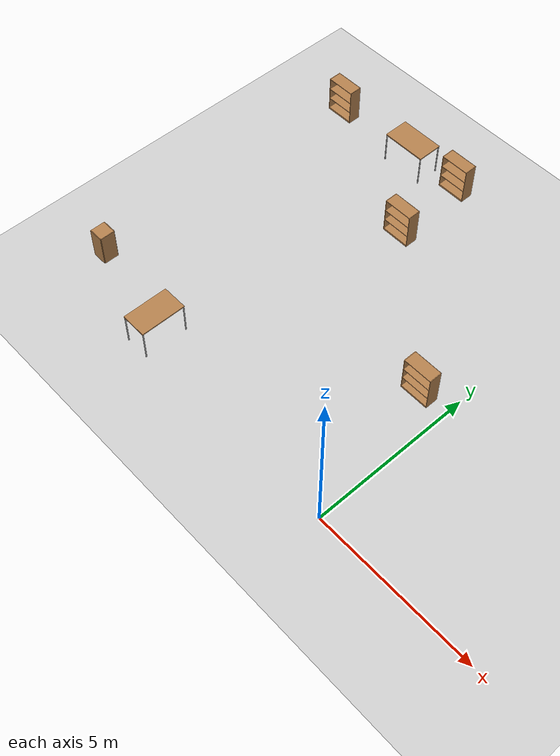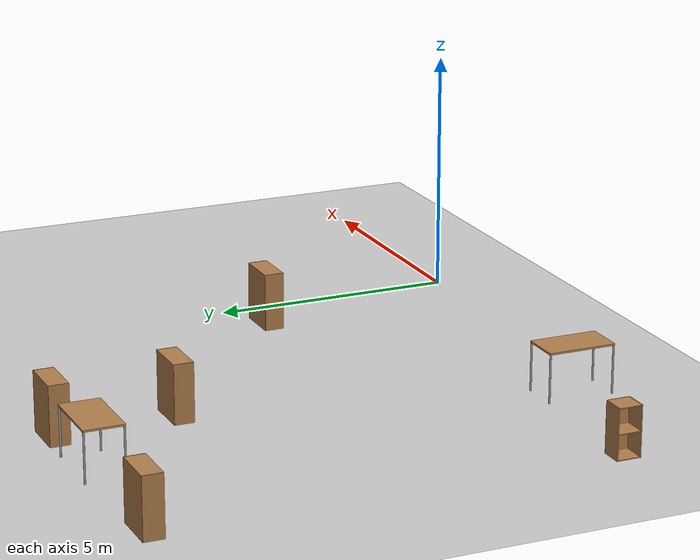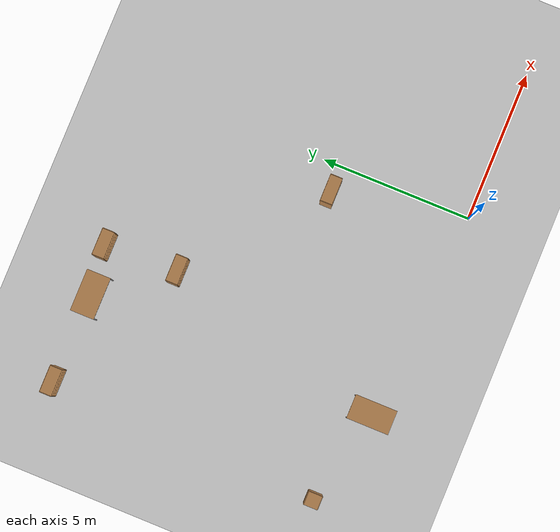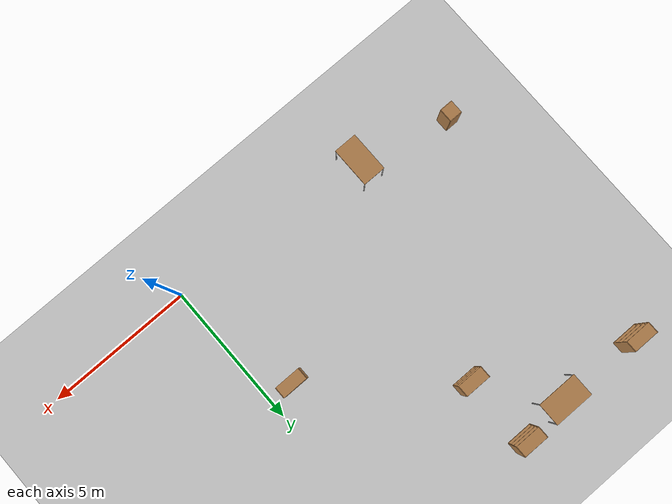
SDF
<sdf version="1.6">
 <world name="default">
  <model name="ground_plane">
   <static>1</static>
   <link name="link">
    <collision name="collision">
     <geometry><plane><normal>0 0 1</normal><size>100 100</size></plane></geometry>
     <surface><friction><ode><mu>100</mu><mu2>50</mu2></ode></friction></surface>
    </collision>
    <visual name="visual">
     <cast_shadows>0</cast_shadows>
     <geometry><plane><normal>0 0 1</normal><size>100 100</size></plane></geometry>
     <material>
      <script><uri>file://media/materials/scripts/gazebo.material</uri><name>Gazebo/Grey</name></script>
     </material>
    </visual>
   </link>
  </model>
  <model name="bookshelf_clone">
   <static>1</static>
   <link name="link">
    <inertial><mass>1</mass></inertial>
    <collision name="back">
     <pose>0 0.005 0.6 0 -0 0</pose>
     <geometry><box><size>0.9 0.01 1.2</size></box></geometry>
    </collision>
    <visual name="visual1">
     <pose>0 0.005 0.6 0 -0 0</pose>
     <geometry><box><size>0.9 0.01 1.2</size></box></geometry>
     <material>
      <script><uri>file://media/materials/scripts/gazebo.material</uri><name>Gazebo/Wood</name></script>
     </material>
    </visual>
    <collision name="left_side">
     <pose>0.45 -0.195 0.6 0 -0 0</pose>
     <geometry><box><size>0.02 0.4 1.2</size></box></geometry>
    </collision>
    <visual name="visual2">
     <pose>0.45 -0.195 0.6 0 -0 0</pose>
     <geometry><box><size>0.02 0.4 1.2</size></box></geometry>
     <material>
      <script><uri>file://media/materials/scripts/gazebo.material</uri><name>Gazebo/Wood</name></script>
     </material>
    </visual>
    <collision name="right_side">
     <pose>-0.45 -0.195 0.6 0 -0 0</pose>
     <geometry><box><size>0.02 0.4 1.2</size></box></geometry>
    </collision>
    <visual name="visual3">
     <pose>-0.45 -0.195 0.6 0 -0 0</pose>
     <geometry><box><size>0.02 0.4 1.2</size></box></geometry>
     <material>
      <script><uri>file://media/materials/scripts/gazebo.material</uri><name>Gazebo/Wood</name></script>
     </material>
    </visual>
    <collision name="bottom">
     <pose>0 -0.195 0.03 0 -0 0</pose>
     <geometry><box><size>0.88 0.4 0.06</size></box></geometry>
    </collision>
    <visual name="visual4">
     <pose>0 -0.195 0.03 0 -0 0</pose>
     <geometry><box><size>0.88 0.4 0.06</size></box></geometry>
     <material>
      <script><uri>file://media/materials/scripts/gazebo.material</uri><name>Gazebo/Wood</name></script>
     </material>
    </visual>
    <collision name="top">
     <pose>0 -0.195 1.19 0 -0 0</pose>
     <geometry><box><size>0.88 0.4 0.02</size></box></geometry>
    </collision>
    <visual name="visual5">
     <pose>0 -0.195 1.19 0 -0 0</pose>
     <geometry><box><size>0.88 0.4 0.02</size></box></geometry>
     <material>
      <script><uri>file://media/materials/scripts/gazebo.material</uri><name>Gazebo/Wood</name></script>
     </material>
    </visual>
    <collision name="low_shelf">
     <pose>0 -0.195 0.43 0 -0 0</pose>
     <geometry><box><size>0.88 0.4 0.02</size></box></geometry>
    </collision>
    <visual name="visual6">
     <pose>0 -0.195 0.43 0 -0 0</pose>
     <geometry><box><size>0.88 0.4 0.02</size></box></geometry>
     <material>
      <script><uri>file://media/materials/scripts/gazebo.material</uri><name>Gazebo/Wood</name></script>
     </material>
    </visual>
    <collision name="high_shelf">
     <pose>0 -0.195 0.8 0 -0 0</pose>
     <geometry><box><size>0.88 0.4 0.02</size></box></geometry>
    </collision>
    <visual name="visual7">
     <pose>0 -0.195 0.8 0 -0 0</pose>
     <geometry><box><size>0.88 0.4 0.02</size></box></geometry>
     <material>
      <script><uri>file://media/materials/scripts/gazebo.material</uri><name>Gazebo/Wood</name></script>
     </material>
    </visual>
   </link>
   <pose>-9.80392 10.4508 0 0 -0 0</pose>
  </model>
  <model name="bookshelf_clone_0">
   <static>1</static>
   <link name="link">
    <inertial><mass>1</mass></inertial>
    <collision name="back">
     <pose>0 0.005 0.6 0 -0 0</pose>
     <geometry><box><size>0.9 0.01 1.2</size></box></geometry>
    </collision>
    <visual name="visual1">
     <pose>0 0.005 0.6 0 -0 0</pose>
     <geometry><box><size>0.9 0.01 1.2</size></box></geometry>
     <material>
      <script><uri>file://media/materials/scripts/gazebo.material</uri><name>Gazebo/Wood</name></script>
     </material>
    </visual>
    <collision name="left_side">
     <pose>0.45 -0.195 0.6 0 -0 0</pose>
     <geometry><box><size>0.02 0.4 1.2</size></box></geometry>
    </collision>
    <visual name="visual2">
     <pose>0.45 -0.195 0.6 0 -0 0</pose>
     <geometry><box><size>0.02 0.4 1.2</size></box></geometry>
     <material>
      <script><uri>file://media/materials/scripts/gazebo.material</uri><name>Gazebo/Wood</name></script>
     </material>
    </visual>
    <collision name="right_side">
     <pose>-0.45 -0.195 0.6 0 -0 0</pose>
     <geometry><box><size>0.02 0.4 1.2</size></box></geometry>
    </collision>
    <visual name="visual3">
     <pose>-0.45 -0.195 0.6 0 -0 0</pose>
     <geometry><box><size>0.02 0.4 1.2</size></box></geometry>
     <material>
      <script><uri>file://media/materials/scripts/gazebo.material</uri><name>Gazebo/Wood</name></script>
     </material>
    </visual>
    <collision name="bottom">
     <pose>0 -0.195 0.03 0 -0 0</pose>
     <geometry><box><size>0.88 0.4 0.06</size></box></geometry>
    </collision>
    <visual name="visual4">
     <pose>0 -0.195 0.03 0 -0 0</pose>
     <geometry><box><size>0.88 0.4 0.06</size></box></geometry>
     <material>
      <script><uri>file://media/materials/scripts/gazebo.material</uri><name>Gazebo/Wood</name></script>
     </material>
    </visual>
    <collision name="top">
     <pose>0 -0.195 1.19 0 -0 0</pose>
     <geometry><box><size>0.88 0.4 0.02</size></box></geometry>
    </collision>
    <visual name="visual5">
     <pose>0 -0.195 1.19 0 -0 0</pose>
     <geometry><box><size>0.88 0.4 0.02</size></box></geometry>
     <material>
      <script><uri>file://media/materials/scripts/gazebo.material</uri><name>Gazebo/Wood</name></script>
     </material>
    </visual>
    <collision name="low_shelf">
     <pose>0 -0.195 0.43 0 -0 0</pose>
     <geometry><box><size>0.88 0.4 0.02</size></box></geometry>
    </collision>
    <visual name="visual6">
     <pose>0 -0.195 0.43 0 -0 0</pose>
     <geometry><box><size>0.88 0.4 0.02</size></box></geometry>
     <material>
      <script><uri>file://media/materials/scripts/gazebo.material</uri><name>Gazebo/Wood</name></script>
     </material>
    </visual>
    <collision name="high_shelf">
     <pose>0 -0.195 0.8 0 -0 0</pose>
     <geometry><box><size>0.88 0.4 0.02</size></box></geometry>
    </collision>
    <visual name="visual7">
     <pose>0 -0.195 0.8 0 -0 0</pose>
     <geometry><box><size>0.88 0.4 0.02</size></box></geometry>
     <material>
      <script><uri>file://media/materials/scripts/gazebo.material</uri><name>Gazebo/Wood</name></script>
     </material>
    </visual>
   </link>
   <pose>-5.09047 8.13769 0 0 -0 0</pose>
  </model>
  <model name="bookshelf_clone_1">
   <static>1</static>
   <link name="link">
    <inertial><mass>1</mass></inertial>
    <collision name="back">
     <pose>0 0.005 0.6 0 -0 0</pose>
     <geometry><box><size>0.9 0.01 1.2</size></box></geometry>
    </collision>
    <visual name="visual1">
     <pose>0 0.005 0.6 0 -0 0</pose>
     <geometry><box><size>0.9 0.01 1.2</size></box></geometry>
     <material>
      <script><uri>file://media/materials/scripts/gazebo.material</uri><name>Gazebo/Wood</name></script>
     </material>
    </visual>
    <collision name="left_side">
     <pose>0.45 -0.195 0.6 0 -0 0</pose>
     <geometry><box><size>0.02 0.4 1.2</size></box></geometry>
    </collision>
    <visual name="visual2">
     <pose>0.45 -0.195 0.6 0 -0 0</pose>
     <geometry><box><size>0.02 0.4 1.2</size></box></geometry>
     <material>
      <script><uri>file://media/materials/scripts/gazebo.material</uri><name>Gazebo/Wood</name></script>
     </material>
    </visual>
    <collision name="right_side">
     <pose>-0.45 -0.195 0.6 0 -0 0</pose>
     <geometry><box><size>0.02 0.4 1.2</size></box></geometry>
    </collision>
    <visual name="visual3">
     <pose>-0.45 -0.195 0.6 0 -0 0</pose>
     <geometry><box><size>0.02 0.4 1.2</size></box></geometry>
     <material>
      <script><uri>file://media/materials/scripts/gazebo.material</uri><name>Gazebo/Wood</name></script>
     </material>
    </visual>
    <collision name="bottom">
     <pose>0 -0.195 0.03 0 -0 0</pose>
     <geometry><box><size>0.88 0.4 0.06</size></box></geometry>
    </collision>
    <visual name="visual4">
     <pose>0 -0.195 0.03 0 -0 0</pose>
     <geometry><box><size>0.88 0.4 0.06</size></box></geometry>
     <material>
      <script><uri>file://media/materials/scripts/gazebo.material</uri><name>Gazebo/Wood</name></script>
     </material>
    </visual>
    <collision name="top">
     <pose>0 -0.195 1.19 0 -0 0</pose>
     <geometry><box><size>0.88 0.4 0.02</size></box></geometry>
    </collision>
    <visual name="visual5">
     <pose>0 -0.195 1.19 0 -0 0</pose>
     <geometry><box><size>0.88 0.4 0.02</size></box></geometry>
     <material>
      <script><uri>file://media/materials/scripts/gazebo.material</uri><name>Gazebo/Wood</name></script>
     </material>
    </visual>
    <collision name="low_shelf">
     <pose>0 -0.195 0.43 0 -0 0</pose>
     <geometry><box><size>0.88 0.4 0.02</size></box></geometry>
    </collision>
    <visual name="visual6">
     <pose>0 -0.195 0.43 0 -0 0</pose>
     <geometry><box><size>0.88 0.4 0.02</size></box></geometry>
     <material>
      <script><uri>file://media/materials/scripts/gazebo.material</uri><name>Gazebo/Wood</name></script>
     </material>
    </visual>
    <collision name="high_shelf">
     <pose>0 -0.195 0.8 0 -0 0</pose>
     <geometry><box><size>0.88 0.4 0.02</size></box></geometry>
    </collision>
    <visual name="visual7">
     <pose>0 -0.195 0.8 0 -0 0</pose>
     <geometry><box><size>0.88 0.4 0.02</size></box></geometry>
     <material>
      <script><uri>file://media/materials/scripts/gazebo.material</uri><name>Gazebo/Wood</name></script>
     </material>
    </visual>
   </link>
   <pose>-5.20737 10.5889 0 0 -0 0</pose>
  </model>
  <model name="bookshelf_clone_2">
   <static>1</static>
   <link name="link">
    <inertial><mass>1</mass></inertial>
    <collision name="back">
     <pose>0 0.005 0.6 0 -0 0</pose>
     <geometry><box><size>0.9 0.01 1.2</size></box></geometry>
    </collision>
    <visual name="visual1">
     <pose>0 0.005 0.6 0 -0 0</pose>
     <geometry><box><size>0.9 0.01 1.2</size></box></geometry>
     <material>
      <script><uri>file://media/materials/scripts/gazebo.material</uri><name>Gazebo/Wood</name></script>
     </material>
    </visual>
    <collision name="left_side">
     <pose>0.45 -0.195 0.6 0 -0 0</pose>
     <geometry><box><size>0.02 0.4 1.2</size></box></geometry>
    </collision>
    <visual name="visual2">
     <pose>0.45 -0.195 0.6 0 -0 0</pose>
     <geometry><box><size>0.02 0.4 1.2</size></box></geometry>
     <material>
      <script><uri>file://media/materials/scripts/gazebo.material</uri><name>Gazebo/Wood</name></script>
     </material>
    </visual>
    <collision name="right_side">
     <pose>-0.45 -0.195 0.6 0 -0 0</pose>
     <geometry><box><size>0.02 0.4 1.2</size></box></geometry>
    </collision>
    <visual name="visual3">
     <pose>-0.45 -0.195 0.6 0 -0 0</pose>
     <geometry><box><size>0.02 0.4 1.2</size></box></geometry>
     <material>
      <script><uri>file://media/materials/scripts/gazebo.material</uri><name>Gazebo/Wood</name></script>
     </material>
    </visual>
    <collision name="bottom">
     <pose>0 -0.195 0.03 0 -0 0</pose>
     <geometry><box><size>0.88 0.4 0.06</size></box></geometry>
    </collision>
    <visual name="visual4">
     <pose>0 -0.195 0.03 0 -0 0</pose>
     <geometry><box><size>0.88 0.4 0.06</size></box></geometry>
     <material>
      <script><uri>file://media/materials/scripts/gazebo.material</uri><name>Gazebo/Wood</name></script>
     </material>
    </visual>
    <collision name="top">
     <pose>0 -0.195 1.19 0 -0 0</pose>
     <geometry><box><size>0.88 0.4 0.02</size></box></geometry>
    </collision>
    <visual name="visual5">
     <pose>0 -0.195 1.19 0 -0 0</pose>
     <geometry><box><size>0.88 0.4 0.02</size></box></geometry>
     <material>
      <script><uri>file://media/materials/scripts/gazebo.material</uri><name>Gazebo/Wood</name></script>
     </material>
    </visual>
    <collision name="low_shelf">
     <pose>0 -0.195 0.43 0 -0 0</pose>
     <geometry><box><size>0.88 0.4 0.02</size></box></geometry>
    </collision>
    <visual name="visual6">
     <pose>0 -0.195 0.43 0 -0 0</pose>
     <geometry><box><size>0.88 0.4 0.02</size></box></geometry>
     <material>
      <script><uri>file://media/materials/scripts/gazebo.material</uri><name>Gazebo/Wood</name></script>
     </material>
    </visual>
    <collision name="high_shelf">
     <pose>0 -0.195 0.8 0 -0 0</pose>
     <geometry><box><size>0.88 0.4 0.02</size></box></geometry>
    </collision>
    <visual name="visual7">
     <pose>0 -0.195 0.8 0 -0 0</pose>
     <geometry><box><size>0.88 0.4 0.02</size></box></geometry>
     <material>
      <script><uri>file://media/materials/scripts/gazebo.material</uri><name>Gazebo/Wood</name></script>
     </material>
    </visual>
   </link>
   <pose>-0.920929 4.60032 0 0 -0 0</pose>
  </model>
  <model name="cabinet_clone">
   <static>1</static>
   <link name="cabinet_bottom_plate">
    <inertial>
     <pose>0 0 -1 0 -0 0</pose>
     <inertia><ixx>2.05</ixx><ixy>0</ixy><ixz>0</ixz><iyy>2.05</iyy><iyz>0</iyz><izz>2.05</izz></inertia>
     <mass>25</mass>
    </inertial>
    <collision name="cabinet_bottom_plate_geom">
     <pose>0 0 0.01 0 -0 0</pose>
     <geometry><box><size>0.45 0.45 0.02</size></box></geometry>
    </collision>
    <visual name="cabinet_bottom_plate_geom_visual">
     <pose>0 0 0.01 0 -0 0</pose>
     <geometry><box><size>0.45 0.45 0.02</size></box></geometry>
     <material>
      <script><uri>file://media/materials/scripts/gazebo.material</uri><name>Gazebo/Wood</name></script>
     </material>
    </visual>
    <collision name="cabinet_bottom_plate_geom_cabinet_back_plate">
     <pose>0.235 0 0.51 0 -0 0</pose>
     <geometry><box><size>0.02 0.45 1.02</size></box></geometry>
    </collision>
    <visual name="cabinet_bottom_plate_geom_cabinet_back_plate_visual">
     <pose>0.235 0 0.51 0 -0 0</pose>
     <geometry><box><size>0.02 0.45 1.02</size></box></geometry>
     <material>
      <script><uri>file://media/materials/scripts/gazebo.material</uri><name>Gazebo/Wood</name></script>
     </material>
    </visual>
    <collision name="cabinet_bottom_plate_geom_cabinet_left_plate">
     <pose>0 0.235 0.51 0 -0 0</pose>
     <geometry><box><size>0.45 0.02 1.02</size></box></geometry>
    </collision>
    <visual name="cabinet_bottom_plate_geom_cabinet_left_plate_visual">
     <pose>0 0.235 0.51 0 -0 0</pose>
     <geometry><box><size>0.45 0.02 1.02</size></box></geometry>
     <material>
      <script><uri>file://media/materials/scripts/gazebo.material</uri><name>Gazebo/Wood</name></script>
     </material>
    </visual>
    <collision name="cabinet_bottom_plate_geom_cabinet_middle_plate">
     <pose>0 0 0.51 0 -0 0</pose>
     <geometry><box><size>0.45 0.45 0.02</size></box></geometry>
    </collision>
    <visual name="cabinet_bottom_plate_geom_cabinet_middle_plate_visual">
     <pose>0 0 0.51 0 -0 0</pose>
     <geometry><box><size>0.45 0.45 0.02</size></box></geometry>
     <material>
      <script><uri>file://media/materials/scripts/gazebo.material</uri><name>Gazebo/Wood</name></script>
     </material>
    </visual>
    <collision name="cabinet_bottom_plate_geom_cabinet_right_plate">
     <pose>0 -0.235 0.51 0 -0 0</pose>
     <geometry><box><size>0.45 0.02 1.02</size></box></geometry>
    </collision>
    <visual name="cabinet_bottom_plate_geom_cabinet_right_plate_visual">
     <pose>0 -0.235 0.51 0 -0 0</pose>
     <geometry><box><size>0.45 0.02 1.02</size></box></geometry>
     <material>
      <script><uri>file://media/materials/scripts/gazebo.material</uri><name>Gazebo/Wood</name></script>
     </material>
    </visual>
    <collision name="cabinet_bottom_plate_geom_cabinet_top_plate">
     <pose>0 0 1.01 0 -0 0</pose>
     <geometry><box><size>0.45 0.45 0.02</size></box></geometry>
    </collision>
    <visual name="cabinet_bottom_plate_geom_cabinet_top_plate_visual">
     <pose>0 0 1.01 0 -0 0</pose>
     <geometry><box><size>0.45 0.45 0.02</size></box></geometry>
     <material>
      <script><uri>file://media/materials/scripts/gazebo.material</uri><name>Gazebo/Wood</name></script>
     </material>
    </visual>
   </link>
   <pose>-10.1589 1.25126 0 0 -0 0</pose>
  </model>
  <model name="table_clone_5">
   <static>0</static>
   <link name="link">
    <collision name="surface">
     <pose>0 0 1 0 -0 0</pose>
     <geometry><box><size>1.5 0.8 0.03</size></box></geometry>
     <surface><friction><ode><mu>0.6</mu><mu2>0.6</mu2></ode></friction></surface>
    </collision>
    <visual name="visual1">
     <pose>0 0 1 0 -0 0</pose>
     <geometry><box><size>1.4 0.8 0.04</size></box></geometry>
     <material>
      <script><uri>file://media/materials/scripts/gazebo.material</uri><name>Gazebo/Wood</name></script>
     </material>
    </visual>
    <collision name="front_left_leg">
     <pose>0.68 0.38 0.5 0 -0 0</pose>
     <geometry><cylinder><radius>0.02</radius><length>1</length></cylinder></geometry>
    </collision>
    <visual name="front_left_leg">
     <pose>0.68 0.38 0.5 0 -0 0</pose>
     <geometry><cylinder><radius>0.02</radius><length>1</length></cylinder></geometry>
     <material>
      <script><uri>file://media/materials/scripts/gazebo.material</uri><name>Gazebo/Grey</name></script>
     </material>
    </visual>
    <collision name="front_right_leg">
     <pose>0.68 -0.38 0.5 0 -0 0</pose>
     <geometry><cylinder><radius>0.02</radius><length>1</length></cylinder></geometry>
    </collision>
    <visual name="front_right_leg">
     <pose>0.68 -0.38 0.5 0 -0 0</pose>
     <geometry><cylinder><radius>0.02</radius><length>1</length></cylinder></geometry>
     <material>
      <script><uri>file://media/materials/scripts/gazebo.material</uri><name>Gazebo/Grey</name></script>
     </material>
    </visual>
    <collision name="back_right_leg">
     <pose>-0.68 -0.38 0.5 0 -0 0</pose>
     <geometry><cylinder><radius>0.02</radius><length>1</length></cylinder></geometry>
    </collision>
    <visual name="back_right_leg">
     <pose>-0.68 -0.38 0.5 0 -0 0</pose>
     <geometry><cylinder><radius>0.02</radius><length>1</length></cylinder></geometry>
     <material>
      <script><uri>file://media/materials/scripts/gazebo.material</uri><name>Gazebo/Grey</name></script>
     </material>
    </visual>
    <collision name="back_left_leg">
     <pose>-0.68 0.38 0.5 0 -0 0</pose>
     <geometry><cylinder><radius>0.02</radius><length>1</length></cylinder></geometry>
    </collision>
    <visual name="back_left_leg">
     <pose>-0.68 0.38 0.5 0 -0 0</pose>
     <geometry><cylinder><radius>0.02</radius><length>1</length></cylinder></geometry>
     <material>
      <script><uri>file://media/materials/scripts/gazebo.material</uri><name>Gazebo/Grey</name></script>
     </material>
    </visual>
    <inertial>
     <inertia><ixx>1</ixx><ixy>0</ixy><ixz>0</ixz><iyy>1</iyy><iyz>0</iyz><izz>1</izz></inertia>
     <mass>1</mass>
    </inertial>
   </link>
   <pose>-6.83426 10.1686 -1e-06 1e-06 -0 0</pose>
  </model>
  <model name="table_clone_7_clone_0">
   <static>0</static>
   <link name="link">
    <collision name="surface">
     <pose>0 0 1 0 -0 0</pose>
     <geometry><box><size>1.5 0.8 0.03</size></box></geometry>
     <surface><friction><ode><mu>0.6</mu><mu2>0.6</mu2></ode></friction></surface>
    </collision>
    <visual name="visual1">
     <pose>0 0 1 0 -0 0</pose>
     <geometry><box><size>1.4 0.8 0.04</size></box></geometry>
     <material>
      <script><uri>file://media/materials/scripts/gazebo.material</uri><name>Gazebo/Wood</name></script>
     </material>
    </visual>
    <collision name="front_left_leg">
     <pose>0.68 0.38 0.5 0 -0 0</pose>
     <geometry><cylinder><radius>0.02</radius><length>1</length></cylinder></geometry>
    </collision>
    <visual name="front_left_leg">
     <pose>0.68 0.38 0.5 0 -0 0</pose>
     <geometry><cylinder><radius>0.02</radius><length>1</length></cylinder></geometry>
     <material>
      <script><uri>file://media/materials/scripts/gazebo.material</uri><name>Gazebo/Grey</name></script>
     </material>
    </visual>
    <collision name="front_right_leg">
     <pose>0.68 -0.38 0.5 0 -0 0</pose>
     <geometry><cylinder><radius>0.02</radius><length>1</length></cylinder></geometry>
    </collision>
    <visual name="front_right_leg">
     <pose>0.68 -0.38 0.5 0 -0 0</pose>
     <geometry><cylinder><radius>0.02</radius><length>1</length></cylinder></geometry>
     <material>
      <script><uri>file://media/materials/scripts/gazebo.material</uri><name>Gazebo/Grey</name></script>
     </material>
    </visual>
    <collision name="back_right_leg">
     <pose>-0.68 -0.38 0.5 0 -0 0</pose>
     <geometry><cylinder><radius>0.02</radius><length>1</length></cylinder></geometry>
    </collision>
    <visual name="back_right_leg">
     <pose>-0.68 -0.38 0.5 0 -0 0</pose>
     <geometry><cylinder><radius>0.02</radius><length>1</length></cylinder></geometry>
     <material>
      <script><uri>file://media/materials/scripts/gazebo.material</uri><name>Gazebo/Grey</name></script>
     </material>
    </visual>
    <collision name="back_left_leg">
     <pose>-0.68 0.38 0.5 0 -0 0</pose>
     <geometry><cylinder><radius>0.02</radius><length>1</length></cylinder></geometry>
    </collision>
    <visual name="back_left_leg">
     <pose>-0.68 0.38 0.5 0 -0 0</pose>
     <geometry><cylinder><radius>0.02</radius><length>1</length></cylinder></geometry>
     <material>
      <script><uri>file://media/materials/scripts/gazebo.material</uri><name>Gazebo/Grey</name></script>
     </material>
    </visual>
    <inertial>
     <inertia><ixx>1</ixx><ixy>0</ixy><ixz>0</ixz><iyy>1</iyy><iyz>0</iyz><izz>1</izz></inertia>
     <mass>1</mass>
    </inertial>
   </link>
   <pose>-6.98049 0.558444 -2e-06 0 1e-06 -1.5708</pose>
  </model>
 </world>
</sdf>
